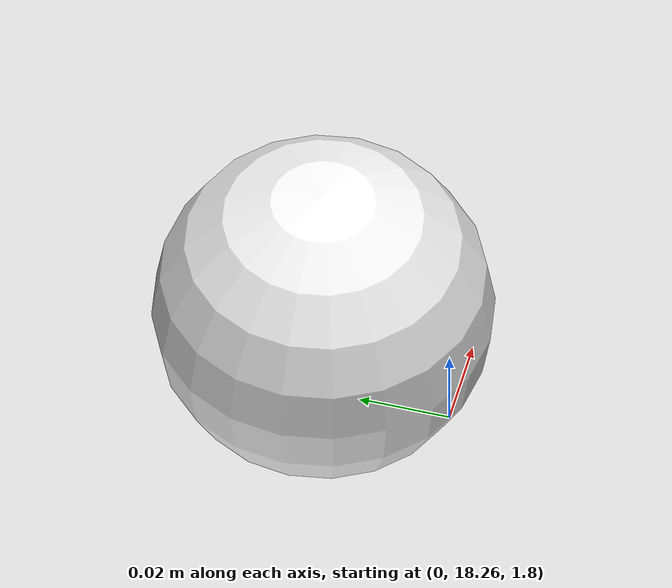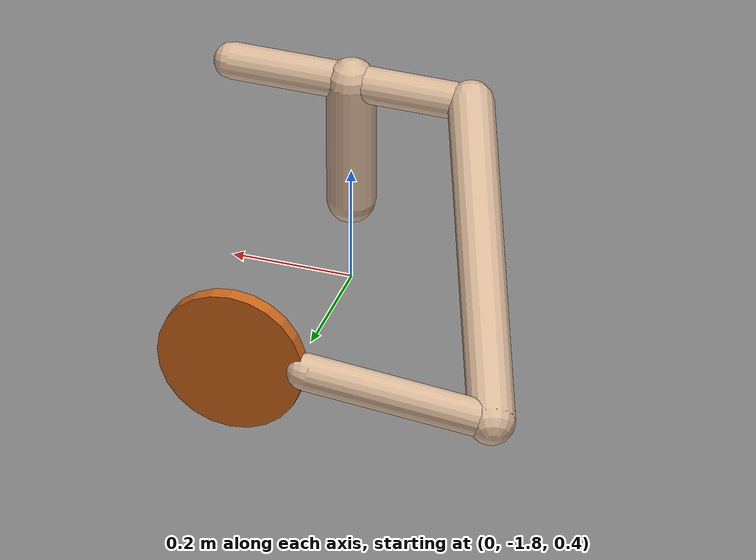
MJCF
<mujoco>
  <option timestep="0.0005"/>
  <!-- tau=0.5ms (matches timestep, max contact stiffness), zeta=1 (critically damped, no bounce) -->
  <default>
    <geom solref="0.0005 1"/>
  </default>
  <worldbody>
    <light pos="0 0 10" dir="0 0 -1" diffuse="1 1 1" specular="0.3 0.3 0.3"/>
    <geom name="floor" type="plane" size="20 20 .1" rgba=".5 .5 .5 1"/>
    <body name="ball" pos="0 18.288 1.829">
      <joint type="free"/>
      <geom type="sphere" size="0.037" rgba="0.95 0.95 0.95 1" mass="0.145"/>
    </body>
    <!-- Torso cross: hip/joint (0,-1.80,0.55), collarbone/top (0,-1.80,0.77), shoulders (±0.20,-1.80,0.77) -->
    <!-- Hip ball joint: k=300 N*m/rad, c=60 N*m*s/rad -->
    <body name="torso" pos="0 -1.80 0.55">
      <joint name="hip" type="ball" stiffness="300" damping="60"/>
      <geom type="capsule" fromto="0 0 0  0 0 0.22"
            size="0.040" rgba="0.85 0.72 0.60 1" mass="20"/>
      <geom type="capsule" fromto="-0.20 0 0.22  0.20 0 0.22"
            size="0.030" rgba="0.85 0.72 0.60 1" mass="3"/>
      <!-- Catcher arm: shoulder(-0.20,-1.80,0.77) to elbow(-0.40,-1.30,0.525) to wrist(-0.12,-1.219,0.610) -->
      <!-- Left shoulder behind and above the glove; left elbow out to the left; ~92 deg angle at elbow -->
      <!-- Shoulder ball joint: k=300 N*m/rad, c=60 N*m*s/rad (tau~0.1 s, I~0.75 kg*m^2) -->
      <body name="upper_arm" pos="-0.20 0 0.22">
        <joint name="shoulder" type="ball" stiffness="300" damping="60"/>
        <geom type="sphere" size="0.025" rgba="0.20 0.45 0.85 1"
              contype="0" conaffinity="0" mass="0"/>
        <geom type="capsule" fromto="0 0 0  -0.20 0.50 -0.245"
              size="0.038" rgba="0.85 0.72 0.60 1" mass="2.0"/>
        <body name="forearm" pos="-0.20 0.50 -0.245">
          <!-- Elbow ball joint: k=68 N*m/rad, c=13.6 N*m*s/rad (tau~0.1 s, I~0.17 kg*m^2) -->
          <joint name="elbow" type="ball" stiffness="68" damping="13.6"/>
          <geom type="sphere" size="0.025" rgba="0.20 0.45 0.85 1"
                contype="0" conaffinity="0" mass="0"/>
          <geom type="capsule" fromto="0 0 0  0.28 0.081 0.085"
                size="0.030" rgba="0.85 0.72 0.60 1" mass="1.2"/>
          <!-- Mitt: thin leather disc, wrist hinge at left (-X) edge -->
          <body name="glove" pos="0.28 0.081 0.085">
            <!-- Wrist hinge: k=14.4 N*m/rad, c=2.88 N*m*s/rad (tau=0.1 s, I~0.018 kg*m^2) -->
            <joint name="wrist" type="hinge" axis="0 0 1" stiffness="14.4" damping="2.88"/>
            <geom type="sphere" size="0.025" rgba="0.20 0.45 0.85 1"
                  contype="0" conaffinity="0" mass="0"/>
            <geom name="glove" type="cylinder" size="0.12 0.0125"
                  pos="0.12 0 0" euler="-90 0 0"
                  rgba="0.80 0.40 0.10 1" mass="1"/>
          </body>
        </body>
      </body>
    </body>
  </worldbody>
</mujoco>
